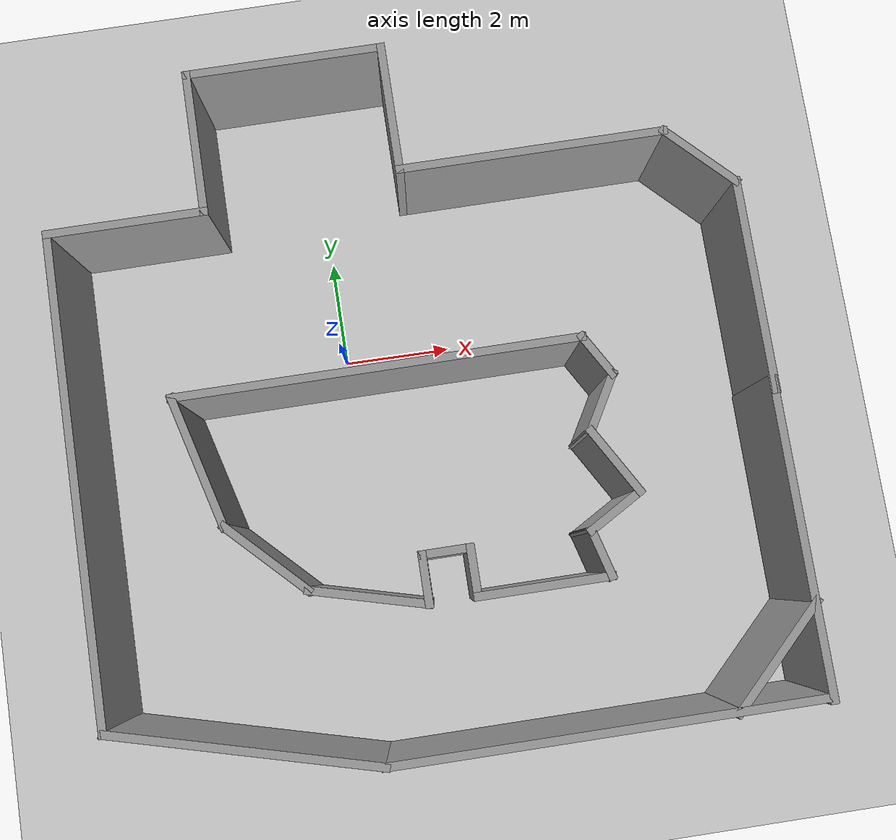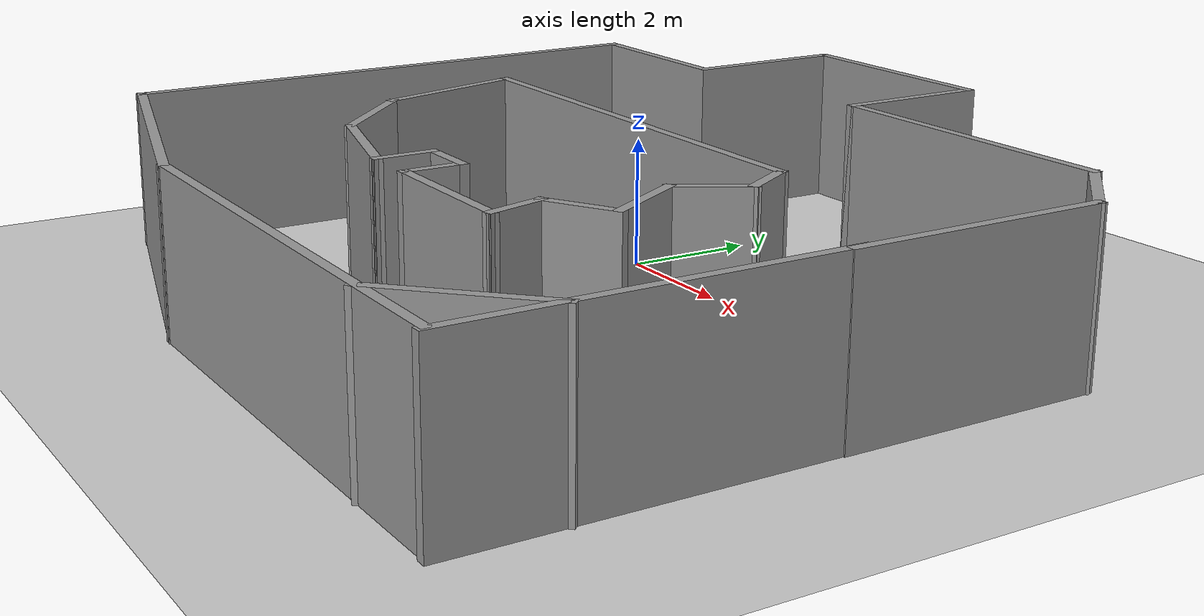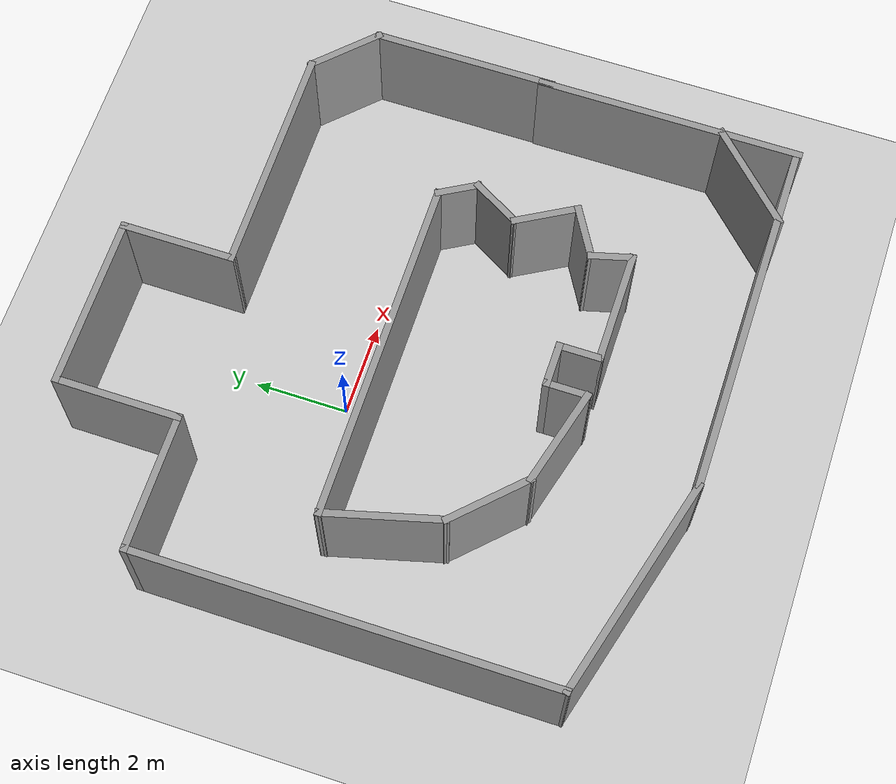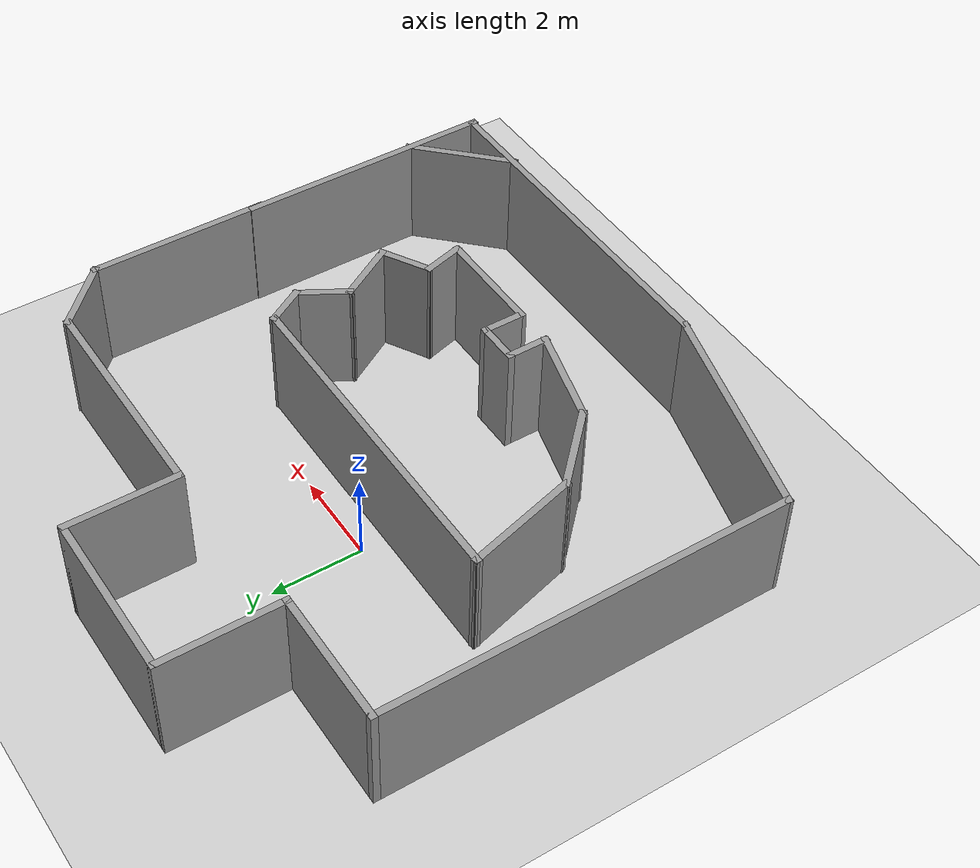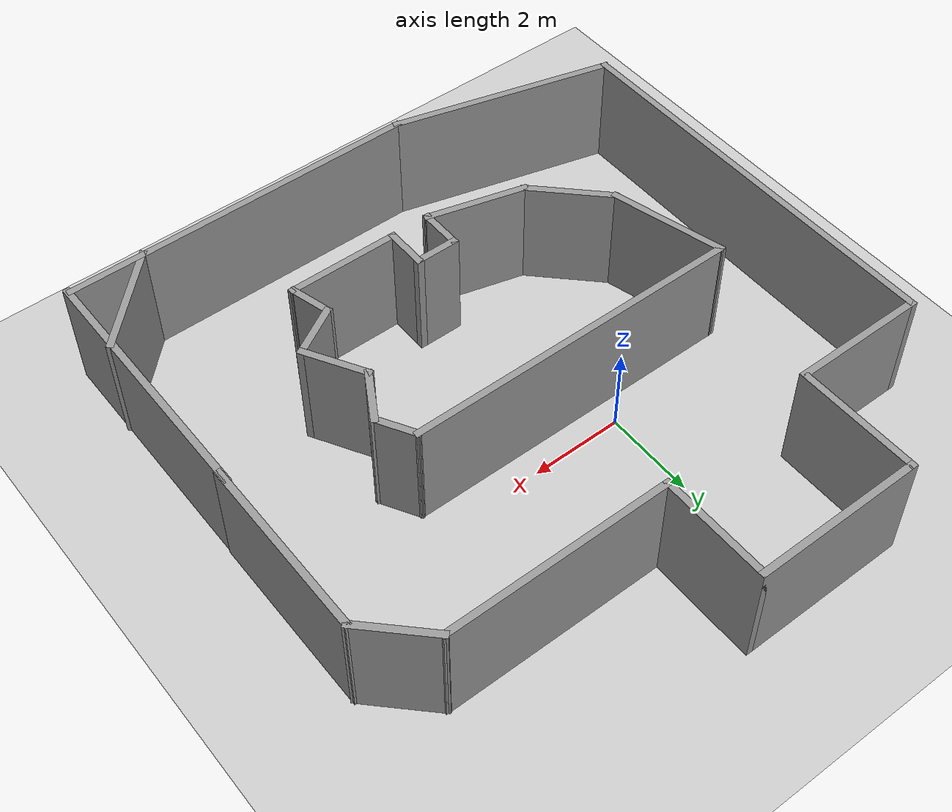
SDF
<sdf version="1.6">
 <world name="default">
  <light name="sun" type="directional">
   <pose>0 0 10 0 -0 0</pose>
   <diffuse>0.8 0.8 0.8 1</diffuse>
   <specular>0.2 0.2 0.2 1</specular>
   <attenuation>
    <range>1000</range>
    <constant>0.9</constant>
    <linear>0.01</linear>
    <quadratic>0.001</quadratic>
   </attenuation>
   <direction>-0.5 0.1 -0.9</direction>
  </light>
  <model name="ground_plane">
   <static>1</static>
   <link name="link">
    <collision name="collision">
     <geometry><plane><normal>0 0 1</normal><size>100 100</size></plane></geometry>
     <surface><friction><ode><mu>100</mu><mu2>50</mu2></ode></friction></surface>
    </collision>
    <visual name="visual">
     <cast_shadows>0</cast_shadows>
     <geometry><plane><normal>0 0 1</normal><size>100 100</size></plane></geometry>
     <material>
      <script><uri>file://media/materials/scripts/gazebo.material</uri><name>Gazebo/Grey</name></script>
     </material>
    </visual>
   </link>
  </model>
  <gravity>0 0 -9.8</gravity>
  <magnetic_field>6e-06 2.3e-05 -4.2e-05</magnetic_field>
  <atmosphere type="adiabatic"/>
  <physics name="default_physics" default="0" type="ode">
   <max_step_size>0.001</max_step_size>
   <real_time_factor>1</real_time_factor>
   <real_time_update_rate>1000</real_time_update_rate>
  </physics>
  <scene><ambient>0.4 0.4 0.4 1</ambient><background>0.7 0.7 0.7 1</background><shadows>1</shadows></scene>
  <spherical_coordinates>
   <surface_model>EARTH_WGS84</surface_model>
   <latitude_deg>0</latitude_deg>
   <longitude_deg>0</longitude_deg>
   <elevation>0</elevation>
   <heading_deg>0</heading_deg>
  </spherical_coordinates>
  <model name="cloister">
   <pose>1.31708 -1.10352 0 0 -0 0</pose>
   <link name="Wall_14">
    <collision name="Wall_14_Collision">
     <geometry><box><size>7.5 0.15 2.5</size></box></geometry>
     <pose>0 0 1.25 0 -0 0</pose>
    </collision>
    <visual name="Wall_14_Visual">
     <pose>0 0 1.25 0 -0 0</pose>
     <geometry><box><size>7.5 0.15 2.5</size></box></geometry>
     <material>
      <script><uri>file://media/materials/scripts/gazebo.material</uri><name>Gazebo/Grey</name></script>
      <ambient>1 1 1 1</ambient>
     </material>
     <meta><layer>0</layer></meta>
    </visual>
    <pose>-0.70063 0.496649 0 0 -0 0</pose>
   </link>
   <link name="Wall_17">
    <collision name="Wall_17_Collision">
     <geometry><box><size>3 0.15 2.5</size></box></geometry>
     <pose>0 0 1.25 0 -0 0</pose>
    </collision>
    <visual name="Wall_17_Visual">
     <pose>0 0 1.25 0 -0 0</pose>
     <geometry><box><size>3 0.15 2.5</size></box></geometry>
     <material>
      <script><uri>file://media/materials/scripts/gazebo.material</uri><name>Gazebo/Grey</name></script>
      <ambient>1 1 1 1</ambient>
     </material>
     <meta><layer>0</layer></meta>
    </visual>
    <pose>-4.80108 3.78119 0 0 -0 0</pose>
   </link>
   <link name="Wall_18">
    <collision name="Wall_18_Collision">
     <geometry><box><size>2.75 0.15 2.5</size></box></geometry>
     <pose>0 0 1.25 0 -0 0</pose>
    </collision>
    <visual name="Wall_18_Visual">
     <pose>0 0 1.25 0 -0 0</pose>
     <geometry><box><size>2.75 0.15 2.5</size></box></geometry>
     <material>
      <script><uri>file://media/materials/scripts/gazebo.material</uri><name>Gazebo/Grey</name></script>
      <ambient>1 1 1 1</ambient>
     </material>
     <meta><layer>0</layer></meta>
    </visual>
    <pose>-3.37608 5.0812 0 0 -0 1.5708</pose>
   </link>
   <link name="Wall_19">
    <collision name="Wall_19_Collision">
     <geometry><box><size>3.75 0.15 2.5</size></box></geometry>
     <pose>0 0 1.25 0 -0 0</pose>
    </collision>
    <visual name="Wall_19_Visual">
     <pose>0 0 1.25 0 -0 0</pose>
     <geometry><box><size>3.75 0.15 2.5</size></box></geometry>
     <material>
      <script><uri>file://media/materials/scripts/gazebo.material</uri><name>Gazebo/Grey</name></script>
      <ambient>1 1 1 1</ambient>
     </material>
     <meta><layer>0</layer></meta>
    </visual>
    <pose>-1.57608 6.3812 0 0 -0 0</pose>
   </link>
   <link name="Wall_20">
    <collision name="Wall_20_Collision">
     <geometry><box><size>2.5 0.15 2.5</size></box></geometry>
     <pose>0 0 1.25 0 -0 0</pose>
    </collision>
    <visual name="Wall_20_Visual">
     <pose>0 0 1.25 0 -0 0</pose>
     <geometry><box><size>2.5 0.15 2.5</size></box></geometry>
     <material>
      <script><uri>file://media/materials/scripts/gazebo.material</uri><name>Gazebo/Grey</name></script>
      <ambient>1 1 1 1</ambient>
     </material>
     <meta><layer>0</layer></meta>
    </visual>
    <pose>0.223921 5.2062 0 0 -0 -1.5708</pose>
   </link>
   <link name="Wall_21">
    <collision name="Wall_21_Collision">
     <geometry><box><size>5 0.15 2.5</size></box></geometry>
     <pose>0 0 1.25 0 -0 0</pose>
    </collision>
    <visual name="Wall_21_Visual">
     <pose>0 0 1.25 0 -0 0</pose>
     <geometry><box><size>5 0.15 2.5</size></box></geometry>
     <material>
      <script><uri>file://media/materials/scripts/gazebo.material</uri><name>Gazebo/Grey</name></script>
      <ambient>1 1 1 1</ambient>
     </material>
     <meta><layer>0</layer></meta>
    </visual>
    <pose>2.64892 4.0312 0 0 -0 0</pose>
   </link>
   <link name="Wall_22">
    <collision name="Wall_22_Collision">
     <geometry><box><size>1.75 0.15 2.5</size></box></geometry>
     <pose>0 0 1.25 0 -0 0</pose>
    </collision>
    <visual name="Wall_22_Visual">
     <pose>0 0 1.25 0 -0 0</pose>
     <geometry><box><size>1.75 0.15 2.5</size></box></geometry>
     <material>
      <script><uri>file://media/materials/scripts/gazebo.material</uri><name>Gazebo/Grey</name></script>
      <ambient>1 1 1 1</ambient>
     </material>
     <meta><layer>0</layer></meta>
    </visual>
    <pose>5.63961 3.46551 0 0 -0 -0.785398</pose>
   </link>
   <link name="Wall_23">
    <collision name="Wall_23_Collision">
     <geometry><box><size>4 0.15 2.5</size></box></geometry>
     <pose>0 0 1.25 0 -0 0</pose>
    </collision>
    <visual name="Wall_23_Visual">
     <pose>0 0 1.25 0 -0 0</pose>
     <geometry><box><size>4 0.15 2.5</size></box></geometry>
     <material>
      <script><uri>file://media/materials/scripts/gazebo.material</uri><name>Gazebo/Grey</name></script>
      <ambient>1 1 1 1</ambient>
     </material>
     <meta><layer>0</layer></meta>
    </visual>
    <pose>6.20529 0.974825 0 0 -0 -1.5708</pose>
   </link>
   <link name="Wall_25">
    <collision name="Wall_25_Collision">
     <geometry><box><size>1 0.15 2.5</size></box></geometry>
     <pose>0 0 1.25 0 -0 0</pose>
    </collision>
    <visual name="Wall_25_Visual">
     <pose>0 0 1.25 0 -0 0</pose>
     <geometry><box><size>1 0.15 2.5</size></box></geometry>
     <material>
      <script><uri>file://media/materials/scripts/gazebo.material</uri><name>Gazebo/Grey</name></script>
      <ambient>1 1 1 1</ambient>
     </material>
     <meta><layer>0</layer></meta>
    </visual>
    <pose>3.18687 0.128588 0 0 -0 -1.0472</pose>
   </link>
   <link name="Wall_26">
    <collision name="Wall_26_Collision">
     <geometry><box><size>1.25 0.15 2.5</size></box></geometry>
     <pose>0 0 1.25 0 -0 0</pose>
    </collision>
    <visual name="Wall_26_Visual">
     <pose>0 0 1.25 0 -0 0</pose>
     <geometry><box><size>1.25 0.15 2.5</size></box></geometry>
     <material>
      <script><uri>file://media/materials/scripts/gazebo.material</uri><name>Gazebo/Grey</name></script>
      <ambient>1 1 1 1</ambient>
     </material>
     <meta><layer>0</layer></meta>
    </visual>
    <pose>3.12437 -0.715786 0 0 -0 -2.0944</pose>
   </link>
   <link name="Wall_27">
    <collision name="Wall_27_Collision">
     <geometry><box><size>1.5 0.15 2.5</size></box></geometry>
     <pose>0 0 1.25 0 -0 0</pose>
    </collision>
    <visual name="Wall_27_Visual">
     <pose>0 0 1.25 0 -0 0</pose>
     <geometry><box><size>1.5 0.15 2.5</size></box></geometry>
     <material>
      <script><uri>file://media/materials/scripts/gazebo.material</uri><name>Gazebo/Grey</name></script>
      <ambient>1 1 1 1</ambient>
     </material>
     <meta><layer>0</layer></meta>
    </visual>
    <pose>3.18687 -1.77667 0 0 -0 -1.0472</pose>
   </link>
   <link name="Wall_28">
    <collision name="Wall_28_Collision">
     <geometry><box><size>1.25 0.15 2.5</size></box></geometry>
     <pose>0 0 1.25 0 -0 0</pose>
    </collision>
    <visual name="Wall_28_Visual">
     <pose>0 0 1.25 0 -0 0</pose>
     <geometry><box><size>1.25 0.15 2.5</size></box></geometry>
     <material>
      <script><uri>file://media/materials/scripts/gazebo.material</uri><name>Gazebo/Grey</name></script>
      <ambient>1 1 1 1</ambient>
     </material>
     <meta><layer>0</layer></meta>
    </visual>
    <pose>3.04806 -2.63624 0 0 -0 -2.61799</pose>
   </link>
   <link name="Wall_29">
    <collision name="Wall_29_Collision">
     <geometry><box><size>1 0.15 2.5</size></box></geometry>
     <pose>0 0 1.25 0 -0 0</pose>
    </collision>
    <visual name="Wall_29_Visual">
     <pose>0 0 1.25 0 -0 0</pose>
     <geometry><box><size>1 0.15 2.5</size></box></geometry>
     <material>
      <script><uri>file://media/materials/scripts/gazebo.material</uri><name>Gazebo/Grey</name></script>
      <ambient>1 1 1 1</ambient>
     </material>
     <meta><layer>0</layer></meta>
    </visual>
    <pose>2.68174 -3.32175 0 0 -0 -1.309</pose>
   </link>
   <link name="Wall_30">
    <collision name="Wall_30_Collision">
     <geometry><box><size>2.5 0.15 2.5</size></box></geometry>
     <pose>0 0 1.25 0 -0 0</pose>
    </collision>
    <visual name="Wall_30_Visual">
     <pose>0 0 1.25 0 -0 0</pose>
     <geometry><box><size>2.5 0.15 2.5</size></box></geometry>
     <material>
      <script><uri>file://media/materials/scripts/gazebo.material</uri><name>Gazebo/Grey</name></script>
      <ambient>1 1 1 1</ambient>
     </material>
     <meta><layer>0</layer></meta>
    </visual>
    <pose>1.61674 -3.73227 0 0 -0 3.14159</pose>
   </link>
   <link name="Wall_31">
    <collision name="Wall_31_Collision">
     <geometry><box><size>1 0.15 2.5</size></box></geometry>
     <pose>0 0 1.25 0 -0 0</pose>
    </collision>
    <visual name="Wall_31_Visual">
     <pose>0 0 1.25 0 -0 0</pose>
     <geometry><box><size>1 0.15 2.5</size></box></geometry>
     <material>
      <script><uri>file://media/materials/scripts/gazebo.material</uri><name>Gazebo/Grey</name></script>
      <ambient>1 1 1 1</ambient>
     </material>
     <meta><layer>0</layer></meta>
    </visual>
    <pose>0.441738 -3.30727 0 0 -0 1.5708</pose>
   </link>
   <link name="Wall_32">
    <collision name="Wall_32_Collision">
     <geometry><box><size>1 0.15 2.5</size></box></geometry>
     <pose>0 0 1.25 0 -0 0</pose>
    </collision>
    <visual name="Wall_32_Visual">
     <pose>0 0 1.25 0 -0 0</pose>
     <geometry><box><size>1 0.15 2.5</size></box></geometry>
     <material>
      <script><uri>file://media/materials/scripts/gazebo.material</uri><name>Gazebo/Grey</name></script>
      <ambient>1 1 1 1</ambient>
     </material>
     <meta><layer>0</layer></meta>
    </visual>
    <pose>0.016738 -2.88227 0 0 -0 3.14159</pose>
   </link>
   <link name="Wall_33">
    <collision name="Wall_33_Collision">
     <geometry><box><size>1 0.15 2.5</size></box></geometry>
     <pose>0 0 1.25 0 -0 0</pose>
    </collision>
    <visual name="Wall_33_Visual">
     <pose>0 0 1.25 0 -0 0</pose>
     <geometry><box><size>1 0.15 2.5</size></box></geometry>
     <material>
      <script><uri>file://media/materials/scripts/gazebo.material</uri><name>Gazebo/Grey</name></script>
      <ambient>1 1 1 1</ambient>
     </material>
     <meta><layer>0</layer></meta>
    </visual>
    <pose>-0.408262 -3.30727 0 0 -0 -1.5708</pose>
   </link>
   <link name="Wall_34">
    <collision name="Wall_34_Collision">
     <geometry><box><size>2.25 0.15 2.5</size></box></geometry>
     <pose>0 0 1.25 0 -0 0</pose>
    </collision>
    <visual name="Wall_34_Visual">
     <pose>0 0 1.25 0 -0 0</pose>
     <geometry><box><size>2.25 0.15 2.5</size></box></geometry>
     <material>
      <script><uri>file://media/materials/scripts/gazebo.material</uri><name>Gazebo/Grey</name></script>
      <ambient>1 1 1 1</ambient>
     </material>
     <meta><layer>0</layer></meta>
    </visual>
    <pose>-1.42248 -3.46051 0 0 -0 2.87979</pose>
   </link>
   <link name="Wall_35">
    <collision name="Wall_35_Collision">
     <geometry><box><size>2 0.15 2.5</size></box></geometry>
     <pose>0 0 1.25 0 -0 0</pose>
    </collision>
    <visual name="Wall_35_Visual">
     <pose>0 0 1.25 0 -0 0</pose>
     <geometry><box><size>2 0.15 2.5</size></box></geometry>
     <material>
      <script><uri>file://media/materials/scripts/gazebo.material</uri><name>Gazebo/Grey</name></script>
      <ambient>1 1 1 1</ambient>
     </material>
     <meta><layer>0</layer></meta>
    </visual>
    <pose>-3.09078 -2.53468 0 0 -0 2.35619</pose>
   </link>
   <link name="Wall_36">
    <collision name="Wall_36_Collision">
     <geometry><box><size>2.60952 0.15 2.5</size></box></geometry>
     <pose>0 0 1.25 0 -0 0</pose>
    </collision>
    <visual name="Wall_36_Visual">
     <pose>0 0 1.25 0 -0 0</pose>
     <geometry><box><size>2.60952 0.15 2.5</size></box></geometry>
     <material>
      <script><uri>file://media/materials/scripts/gazebo.material</uri><name>Gazebo/Grey</name></script>
      <ambient>1 1 1 1</ambient>
     </material>
     <meta><layer>0</layer></meta>
    </visual>
    <pose>-4.06024 -0.691978 0 0 -0 1.83016</pose>
   </link>
   <link name="Wall_38">
    <collision name="Wall_38_Collision">
     <geometry><box><size>5 0.15 2.5</size></box></geometry>
     <pose>0 0 1.25 0 -0 0</pose>
    </collision>
    <visual name="Wall_38_Visual">
     <pose>0 0 1.25 0 -0 0</pose>
     <geometry><box><size>5 0.15 2.5</size></box></geometry>
     <material>
      <script><uri>file://media/materials/scripts/gazebo.material</uri><name>Gazebo/Grey</name></script>
      <ambient>1 1 1 1</ambient>
     </material>
     <meta><layer>0</layer></meta>
    </visual>
    <pose>-3.88371 -5.69644 0 0 -0 -0.261799</pose>
   </link>
   <link name="Wall_39">
    <collision name="Wall_39_Collision">
     <geometry><box><size>7.83503 0.15 2.5</size></box></geometry>
     <pose>0 0 1.25 0 -0 0</pose>
    </collision>
    <visual name="Wall_39_Visual">
     <pose>0 0 1.25 0 -0 0</pose>
     <geometry><box><size>7.83503 0.15 2.5</size></box></geometry>
     <material>
      <script><uri>file://media/materials/scripts/gazebo.material</uri><name>Gazebo/Grey</name></script>
      <ambient>1 1 1 1</ambient>
     </material>
     <meta><layer>0</layer></meta>
    </visual>
    <pose>2.30118 -6.32408 0 0 -0 0</pose>
   </link>
   <link name="Wall_40">
    <collision name="Wall_40_Collision">
     <geometry><box><size>5.75 0.15 2.5</size></box></geometry>
     <pose>0 0 1.25 0 -0 0</pose>
    </collision>
    <visual name="Wall_40_Visual">
     <pose>0 0 1.25 0 -0 0</pose>
     <geometry><box><size>5.75 0.15 2.5</size></box></geometry>
     <material>
      <script><uri>file://media/materials/scripts/gazebo.material</uri><name>Gazebo/Grey</name></script>
      <ambient>1 1 1 1</ambient>
     </material>
     <meta><layer>0</layer></meta>
    </visual>
    <pose>6.18415 -3.56453 0 0 -0 1.5708</pose>
   </link>
   <link name="Wall_42">
    <collision name="Wall_42_Collision">
     <geometry><box><size>2.5 0.15 2.5</size></box></geometry>
     <pose>0 0 1.25 0 -0 0</pose>
    </collision>
    <visual name="Wall_42_Visual">
     <pose>0 0 1.25 0 -0 0</pose>
     <geometry><box><size>2.5 0.15 2.5</size></box></geometry>
     <material>
      <script><uri>file://media/materials/scripts/gazebo.material</uri><name>Gazebo/Grey</name></script>
      <ambient>1 1 1 1</ambient>
     </material>
     <meta><layer>0</layer></meta>
    </visual>
    <pose>5.38102 -5.51928 0 0 -0 -2.35619</pose>
   </link>
   <link name="Wall_8">
    <collision name="Wall_8_Collision">
     <geometry><box><size>9 0.15 2.5</size></box></geometry>
     <pose>0 0 1.25 0 -0 0</pose>
    </collision>
    <visual name="Wall_8_Visual">
     <pose>0 0 1.25 0 -0 0</pose>
     <geometry><box><size>9 0.15 2.5</size></box></geometry>
     <material>
      <script><uri>file://media/materials/scripts/gazebo.material</uri><name>Gazebo/Grey</name></script>
      <ambient>1 1 1 1</ambient>
     </material>
     <meta><layer>0</layer></meta>
    </visual>
    <pose>-6.22608 -0.643805 0 0 -0 -1.5708</pose>
   </link>
   <static>1</static>
  </model>
 </world>
</sdf>
